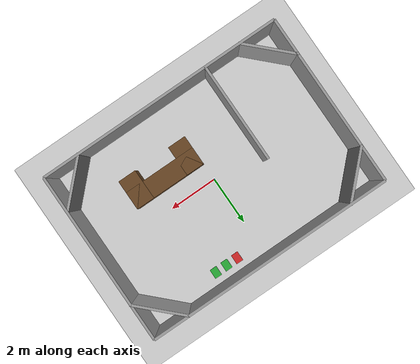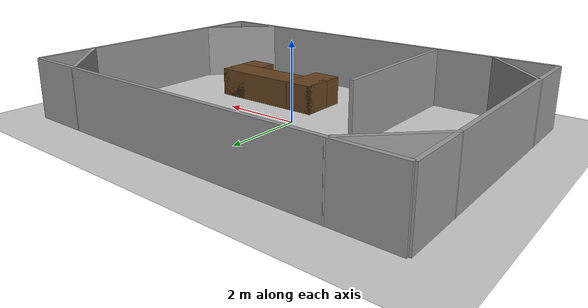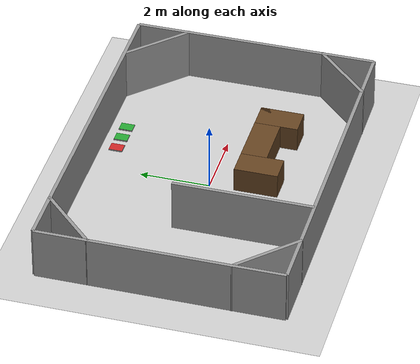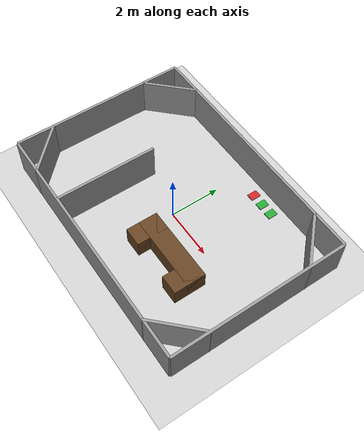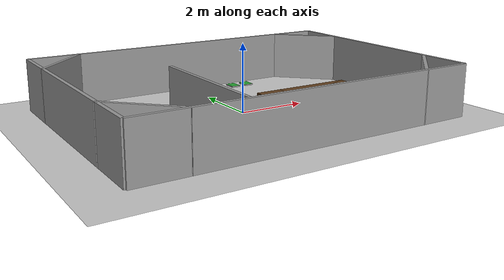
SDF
<sdf version="1.6">
 <world name="default">
  <include><uri>model://ground_plane</uri></include>
  <include><uri>model://sun</uri></include>
  <include><uri>model://room2</uri><pose>0 0 0.5 0 0 0</pose></include>
  <include><uri>model://PaintTrayRed</uri><pose>1 3 0.02 0 0 1.5707</pose></include>
  <include><uri>model://PaintTrayGreen</uri><pose>1.5 3 0.02 0 0 1.5707</pose></include>
  <include><uri>model://PaintTrayBlue</uri><pose>2 3 0.02 0 0 1.5707</pose></include>
  <include><uri>model://Desk</uri><pose>1.5 -1.25 0.3675 0 0 0</pose></include>
 </world>
</sdf>

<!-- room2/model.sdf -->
<sdf version='1.6'>
  <model name='room2'>
    <link name='outer_0'>
      <inertial>
        <mass>1</mass>
        <inertia>
          <ixx>0.166667</ixx>
          <ixy>0</ixy>
          <ixz>0</ixz>
          <iyy>0.166667</iyy>
          <iyz>0</iyz>
          <izz>0.166667</izz>
        </inertia>
        <pose frame=''>0 0 0 0 -0 0</pose>
      </inertial>
      <pose frame=''>0 -3.5 0 0 -0 0</pose>
      <gravity>1</gravity>
      <self_collide>0</self_collide>
      <kinematic>0</kinematic>
      <enable_wind>0</enable_wind>
      <visual name='visual'>
        <pose frame=''>0 0 0 0 -0 0</pose>
        <geometry>
          <box>
            <size>10 0.1 2</size>
          </box>
        </geometry>
        <material>
          <lighting>1</lighting>
          <script>
            <uri>file://media/materials/scripts/gazebo.material</uri>
            <name>Gazebo/Grey</name>
          </script>
          <shader type='pixel'>
            <normal_map>__default__</normal_map>
          </shader>
          <ambient>0.3 0.3 0.3 1</ambient>
          <diffuse>0.7 0.7 0.7 1</diffuse>
          <specular>0.01 0.01 0.01 1</specular>
          <emissive>0 0 0 1</emissive>
        </material>
        <transparency>0</transparency>
        <cast_shadows>1</cast_shadows>
      </visual>
      <collision name='collision'>
        <laser_retro>0</laser_retro>
        <max_contacts>10</max_contacts>
        <pose frame=''>0 0 0 0 -0 0</pose>
        <geometry>
          <box>
            <size>10 0.1 2</size>
          </box>
        </geometry>
        <surface>
          <friction>
            <ode>
              <mu>1</mu>
              <mu2>1</mu2>
              <fdir1>0 0 0</fdir1>
              <slip1>0</slip1>
              <slip2>0</slip2>
            </ode>
            <torsional>
              <coefficient>1</coefficient>
              <patch_radius>0</patch_radius>
              <surface_radius>0</surface_radius>
              <use_patch_radius>1</use_patch_radius>
              <ode>
                <slip>0</slip>
              </ode>
            </torsional>
          </friction>
          <bounce>
            <restitution_coefficient>0</restitution_coefficient>
            <threshold>1e+06</threshold>
          </bounce>
          <contact>
            <collide_without_contact>0</collide_without_contact>
            <collide_without_contact_bitmask>1</collide_without_contact_bitmask>
            <collide_bitmask>1</collide_bitmask>
            <ode>
              <soft_cfm>0</soft_cfm>
              <soft_erp>0.2</soft_erp>
              <kp>1e+13</kp>
              <kd>1</kd>
              <max_vel>0.01</max_vel>
              <min_depth>0</min_depth>
            </ode>
            <bullet>
              <split_impulse>1</split_impulse>
              <split_impulse_penetration_threshold>-0.01</split_impulse_penetration_threshold>
              <soft_cfm>0</soft_cfm>
              <soft_erp>0.2</soft_erp>
              <kp>1e+13</kp>
              <kd>1</kd>
            </bullet>
          </contact>
        </surface>
      </collision>
    </link>
    <link name='inner_0'>
      <inertial>
        <mass>1</mass>
        <inertia>
          <ixx>0.166667</ixx>
          <ixy>0</ixy>
          <ixz>0</ixz>
          <iyy>0.166667</iyy>
          <iyz>0</iyz>
          <izz>0.166667</izz>
        </inertia>
        <pose frame=''>0 0 0 0 -0 0</pose>
      </inertial>
      <pose frame=''>-2 -1.5 0 0 -0 0</pose>
      <gravity>1</gravity>
      <self_collide>0</self_collide>
      <kinematic>0</kinematic>
      <enable_wind>0</enable_wind>
      <visual name='visual'>
        <pose frame=''>0 0 0 0 -0 0</pose>
        <geometry>
          <box>
            <size>0.1 4 2</size>
          </box>
        </geometry>
        <material>
          <lighting>1</lighting>
          <script>
            <uri>file://media/materials/scripts/gazebo.material</uri>
            <name>Gazebo/Grey</name>
          </script>
          <shader type='pixel'>
            <normal_map>__default__</normal_map>
          </shader>
          <ambient>0.3 0.3 0.3 1</ambient>
          <diffuse>0.7 0.7 0.7 1</diffuse>
          <specular>0.01 0.01 0.01 1</specular>
          <emissive>0 0 0 1</emissive>
        </material>
        <transparency>0</transparency>
        <cast_shadows>1</cast_shadows>
      </visual>
      <collision name='collision'>
        <laser_retro>0</laser_retro>
        <max_contacts>10</max_contacts>
        <pose frame=''>0 0 0 0 -0 0</pose>
        <geometry>
          <box>
            <size>0.1 4 2</size>
          </box>
        </geometry>
        <surface>
          <friction>
            <ode>
              <mu>1</mu>
              <mu2>1</mu2>
              <fdir1>0 0 0</fdir1>
              <slip1>0</slip1>
              <slip2>0</slip2>
            </ode>
            <torsional>
              <coefficient>1</coefficient>
              <patch_radius>0</patch_radius>
              <surface_radius>0</surface_radius>
              <use_patch_radius>1</use_patch_radius>
              <ode>
                <slip>0</slip>
              </ode>
            </torsional>
          </friction>
          <bounce>
            <restitution_coefficient>0</restitution_coefficient>
            <threshold>1e+06</threshold>
          </bounce>
          <contact>
            <collide_without_contact>0</collide_without_contact>
            <collide_without_contact_bitmask>1</collide_without_contact_bitmask>
            <collide_bitmask>1</collide_bitmask>
            <ode>
              <soft_cfm>0</soft_cfm>
              <soft_erp>0.2</soft_erp>
              <kp>1e+13</kp>
              <kd>1</kd>
              <max_vel>0.01</max_vel>
              <min_depth>0</min_depth>
            </ode>
            <bullet>
              <split_impulse>1</split_impulse>
              <split_impulse_penetration_threshold>-0.01</split_impulse_penetration_threshold>
              <soft_cfm>0</soft_cfm>
              <soft_erp>0.2</soft_erp>
              <kp>1e+13</kp>
              <kd>1</kd>
            </bullet>
          </contact>
        </surface>
      </collision>
    </link>
    <link name='inner_1'>
      <inertial>
        <mass>1</mass>
        <inertia>
          <ixx>0.166667</ixx>
          <ixy>0</ixy>
          <ixz>0</ixz>
          <iyy>0.166667</iyy>
          <iyz>0</iyz>
          <izz>0.166667</izz>
        </inertia>
        <pose frame=''>0 0 0 0 -0 0</pose>
      </inertial>
      <pose frame=''>-4.25 -2.75 0 0 -0 0.79</pose>
      <gravity>1</gravity>
      <self_collide>0</self_collide>
      <kinematic>0</kinematic>
      <enable_wind>0</enable_wind>
      <visual name='visual'>
        <pose frame=''>0 0 0 0 -0 0</pose>
        <geometry>
          <box>
            <size>0.1 2.2 2</size>
          </box>
        </geometry>
        <material>
          <lighting>1</lighting>
          <script>
            <uri>file://media/materials/scripts/gazebo.material</uri>
            <name>Gazebo/Grey</name>
          </script>
          <shader type='pixel'>
            <normal_map>__default__</normal_map>
          </shader>
          <ambient>0.3 0.3 0.3 1</ambient>
          <diffuse>0.7 0.7 0.7 1</diffuse>
          <specular>0.01 0.01 0.01 1</specular>
          <emissive>0 0 0 1</emissive>
        </material>
        <transparency>0</transparency>
        <cast_shadows>1</cast_shadows>
      </visual>
      <collision name='collision'>
        <laser_retro>0</laser_retro>
        <max_contacts>10</max_contacts>
        <pose frame=''>0 0 0 0 -0 0</pose>
        <geometry>
          <box>
            <size>0.1 2.2 2</size>
          </box>
        </geometry>
        <surface>
          <friction>
            <ode>
              <mu>1</mu>
              <mu2>1</mu2>
              <fdir1>0 0 0</fdir1>
              <slip1>0</slip1>
              <slip2>0</slip2>
            </ode>
            <torsional>
              <coefficient>1</coefficient>
              <patch_radius>0</patch_radius>
              <surface_radius>0</surface_radius>
              <use_patch_radius>1</use_patch_radius>
              <ode>
                <slip>0</slip>
              </ode>
            </torsional>
          </friction>
          <bounce>
            <restitution_coefficient>0</restitution_coefficient>
            <threshold>1e+06</threshold>
          </bounce>
          <contact>
            <collide_without_contact>0</collide_without_contact>
            <collide_without_contact_bitmask>1</collide_without_contact_bitmask>
            <collide_bitmask>1</collide_bitmask>
            <ode>
              <soft_cfm>0</soft_cfm>
              <soft_erp>0.2</soft_erp>
              <kp>1e+13</kp>
              <kd>1</kd>
              <max_vel>0.01</max_vel>
              <min_depth>0</min_depth>
            </ode>
            <bullet>
              <split_impulse>1</split_impulse>
              <split_impulse_penetration_threshold>-0.01</split_impulse_penetration_threshold>
              <soft_cfm>0</soft_cfm>
              <soft_erp>0.2</soft_erp>
              <kp>1e+13</kp>
              <kd>1</kd>
            </bullet>
          </contact>
        </surface>
      </collision>
    </link>
    <link name='inner_2'>
      <inertial>
        <mass>1</mass>
        <inertia>
          <ixx>0.166667</ixx>
          <ixy>0</ixy>
          <ixz>0</ixz>
          <iyy>0.166667</iyy>
          <iyz>0</iyz>
          <izz>0.166667</izz>
        </inertia>
        <pose frame=''>0 0 0 0 -0 0</pose>
      </inertial>
      <pose frame=''>-4.25 2.75 0 0 -0 2.36</pose>
      <gravity>1</gravity>
      <self_collide>0</self_collide>
      <kinematic>0</kinematic>
      <enable_wind>0</enable_wind>
      <visual name='visual'>
        <pose frame=''>0 0 0 0 -0 0</pose>
        <geometry>
          <box>
            <size>0.1 2.2 2</size>
          </box>
        </geometry>
        <material>
          <lighting>1</lighting>
          <script>
            <uri>file://media/materials/scripts/gazebo.material</uri>
            <name>Gazebo/Grey</name>
          </script>
          <shader type='pixel'>
            <normal_map>__default__</normal_map>
          </shader>
          <ambient>0.3 0.3 0.3 1</ambient>
          <diffuse>0.7 0.7 0.7 1</diffuse>
          <specular>0.01 0.01 0.01 1</specular>
          <emissive>0 0 0 1</emissive>
        </material>
        <transparency>0</transparency>
        <cast_shadows>1</cast_shadows>
      </visual>
      <collision name='collision'>
        <laser_retro>0</laser_retro>
        <max_contacts>10</max_contacts>
        <pose frame=''>0 0 0 0 -0 0</pose>
        <geometry>
          <box>
            <size>0.1 2.2 2</size>
          </box>
        </geometry>
        <surface>
          <friction>
            <ode>
              <mu>1</mu>
              <mu2>1</mu2>
              <fdir1>0 0 0</fdir1>
              <slip1>0</slip1>
              <slip2>0</slip2>
            </ode>
            <torsional>
              <coefficient>1</coefficient>
              <patch_radius>0</patch_radius>
              <surface_radius>0</surface_radius>
              <use_patch_radius>1</use_patch_radius>
              <ode>
                <slip>0</slip>
              </ode>
            </torsional>
          </friction>
          <bounce>
            <restitution_coefficient>0</restitution_coefficient>
            <threshold>1e+06</threshold>
          </bounce>
          <contact>
            <collide_without_contact>0</collide_without_contact>
            <collide_without_contact_bitmask>1</collide_without_contact_bitmask>
            <collide_bitmask>1</collide_bitmask>
            <ode>
              <soft_cfm>0</soft_cfm>
              <soft_erp>0.2</soft_erp>
              <kp>1e+13</kp>
              <kd>1</kd>
              <max_vel>0.01</max_vel>
              <min_depth>0</min_depth>
            </ode>
            <bullet>
              <split_impulse>1</split_impulse>
              <split_impulse_penetration_threshold>-0.01</split_impulse_penetration_threshold>
              <soft_cfm>0</soft_cfm>
              <soft_erp>0.2</soft_erp>
              <kp>1e+13</kp>
              <kd>1</kd>
            </bullet>
          </contact>
        </surface>
      </collision>
    </link>
    <link name='inner_3'>
      <inertial>
        <mass>1</mass>
        <inertia>
          <ixx>0.166667</ixx>
          <ixy>0</ixy>
          <ixz>0</ixz>
          <iyy>0.166667</iyy>
          <iyz>0</iyz>
          <izz>0.166667</izz>
        </inertia>
        <pose frame=''>0 0 0 0 -0 0</pose>
      </inertial>
      <pose frame=''>4.25 2.75 0 0 0 -2.35318</pose>
      <gravity>1</gravity>
      <self_collide>0</self_collide>
      <kinematic>0</kinematic>
      <enable_wind>0</enable_wind>
      <visual name='visual'>
        <pose frame=''>0 0 0 0 -0 0</pose>
        <geometry>
          <box>
            <size>0.1 2.2 2</size>
          </box>
        </geometry>
        <material>
          <lighting>1</lighting>
          <script>
            <uri>file://media/materials/scripts/gazebo.material</uri>
            <name>Gazebo/Grey</name>
          </script>
          <shader type='pixel'>
            <normal_map>__default__</normal_map>
          </shader>
          <ambient>0.3 0.3 0.3 1</ambient>
          <diffuse>0.7 0.7 0.7 1</diffuse>
          <specular>0.01 0.01 0.01 1</specular>
          <emissive>0 0 0 1</emissive>
        </material>
        <transparency>0</transparency>
        <cast_shadows>1</cast_shadows>
      </visual>
      <collision name='collision'>
        <laser_retro>0</laser_retro>
        <max_contacts>10</max_contacts>
        <pose frame=''>0 0 0 0 -0 0</pose>
        <geometry>
          <box>
            <size>0.1 2.2 2</size>
          </box>
        </geometry>
        <surface>
          <friction>
            <ode>
              <mu>1</mu>
              <mu2>1</mu2>
              <fdir1>0 0 0</fdir1>
              <slip1>0</slip1>
              <slip2>0</slip2>
            </ode>
            <torsional>
              <coefficient>1</coefficient>
              <patch_radius>0</patch_radius>
              <surface_radius>0</surface_radius>
              <use_patch_radius>1</use_patch_radius>
              <ode>
                <slip>0</slip>
              </ode>
            </torsional>
          </friction>
          <bounce>
            <restitution_coefficient>0</restitution_coefficient>
            <threshold>1e+06</threshold>
          </bounce>
          <contact>
            <collide_without_contact>0</collide_without_contact>
            <collide_without_contact_bitmask>1</collide_without_contact_bitmask>
            <collide_bitmask>1</collide_bitmask>
            <ode>
              <soft_cfm>0</soft_cfm>
              <soft_erp>0.2</soft_erp>
              <kp>1e+13</kp>
              <kd>1</kd>
              <max_vel>0.01</max_vel>
              <min_depth>0</min_depth>
            </ode>
            <bullet>
              <split_impulse>1</split_impulse>
              <split_impulse_penetration_threshold>-0.01</split_impulse_penetration_threshold>
              <soft_cfm>0</soft_cfm>
              <soft_erp>0.2</soft_erp>
              <kp>1e+13</kp>
              <kd>1</kd>
            </bullet>
          </contact>
        </surface>
      </collision>
    </link>
    <link name='inner_4'>
      <inertial>
        <mass>1</mass>
        <inertia>
          <ixx>0.166667</ixx>
          <ixy>0</ixy>
          <ixz>0</ixz>
          <iyy>0.166667</iyy>
          <iyz>0</iyz>
          <izz>0.166667</izz>
        </inertia>
        <pose frame=''>0 0 0 0 -0 0</pose>
      </inertial>
      <pose frame=''>4.25 -2.75 0 0 0 -0.783185</pose>
      <gravity>1</gravity>
      <self_collide>0</self_collide>
      <kinematic>0</kinematic>
      <enable_wind>0</enable_wind>
      <visual name='visual'>
        <pose frame=''>0 0 0 0 -0 0</pose>
        <geometry>
          <box>
            <size>0.1 2.2 2</size>
          </box>
        </geometry>
        <material>
          <lighting>1</lighting>
          <script>
            <uri>file://media/materials/scripts/gazebo.material</uri>
            <name>Gazebo/Grey</name>
          </script>
          <shader type='pixel'>
            <normal_map>__default__</normal_map>
          </shader>
          <ambient>0.3 0.3 0.3 1</ambient>
          <diffuse>0.7 0.7 0.7 1</diffuse>
          <specular>0.01 0.01 0.01 1</specular>
          <emissive>0 0 0 1</emissive>
        </material>
        <transparency>0</transparency>
        <cast_shadows>1</cast_shadows>
      </visual>
      <collision name='collision'>
        <laser_retro>0</laser_retro>
        <max_contacts>10</max_contacts>
        <pose frame=''>0 0 0 0 -0 0</pose>
        <geometry>
          <box>
            <size>0.1 2.2 2</size>
          </box>
        </geometry>
        <surface>
          <friction>
            <ode>
              <mu>1</mu>
              <mu2>1</mu2>
              <fdir1>0 0 0</fdir1>
              <slip1>0</slip1>
              <slip2>0</slip2>
            </ode>
            <torsional>
              <coefficient>1</coefficient>
              <patch_radius>0</patch_radius>
              <surface_radius>0</surface_radius>
              <use_patch_radius>1</use_patch_radius>
              <ode>
                <slip>0</slip>
              </ode>
            </torsional>
          </friction>
          <bounce>
            <restitution_coefficient>0</restitution_coefficient>
            <threshold>1e+06</threshold>
          </bounce>
          <contact>
            <collide_without_contact>0</collide_without_contact>
            <collide_without_contact_bitmask>1</collide_without_contact_bitmask>
            <collide_bitmask>1</collide_bitmask>
            <ode>
              <soft_cfm>0</soft_cfm>
              <soft_erp>0.2</soft_erp>
              <kp>1e+13</kp>
              <kd>1</kd>
              <max_vel>0.01</max_vel>
              <min_depth>0</min_depth>
            </ode>
            <bullet>
              <split_impulse>1</split_impulse>
              <split_impulse_penetration_threshold>-0.01</split_impulse_penetration_threshold>
              <soft_cfm>0</soft_cfm>
              <soft_erp>0.2</soft_erp>
              <kp>1e+13</kp>
              <kd>1</kd>
            </bullet>
          </contact>
        </surface>
      </collision>
    </link>
    <link name='outer_1'>
      <inertial>
        <mass>1</mass>
        <inertia>
          <ixx>0.166667</ixx>
          <ixy>0</ixy>
          <ixz>0</ixz>
          <iyy>0.166667</iyy>
          <iyz>0</iyz>
          <izz>0.166667</izz>
        </inertia>
        <pose frame=''>0 0 0 0 -0 0</pose>
      </inertial>
      <pose frame=''>0 3.5 0 0 -0 0</pose>
      <gravity>1</gravity>
      <self_collide>0</self_collide>
      <kinematic>0</kinematic>
      <enable_wind>0</enable_wind>
      <visual name='visual'>
        <pose frame=''>0 0 0 0 -0 0</pose>
        <geometry>
          <box>
            <size>10 0.1 2</size>
          </box>
        </geometry>
        <material>
          <lighting>1</lighting>
          <script>
            <uri>file://media/materials/scripts/gazebo.material</uri>
            <name>Gazebo/Grey</name>
          </script>
          <shader type='pixel'>
            <normal_map>__default__</normal_map>
          </shader>
          <ambient>0.3 0.3 0.3 1</ambient>
          <diffuse>0.7 0.7 0.7 1</diffuse>
          <specular>0.01 0.01 0.01 1</specular>
          <emissive>0 0 0 1</emissive>
        </material>
        <transparency>0</transparency>
        <cast_shadows>1</cast_shadows>
      </visual>
      <collision name='collision'>
        <laser_retro>0</laser_retro>
        <max_contacts>10</max_contacts>
        <pose frame=''>0 0 0 0 -0 0</pose>
        <geometry>
          <box>
            <size>10 0.1 2</size>
          </box>
        </geometry>
        <surface>
          <friction>
            <ode>
              <mu>1</mu>
              <mu2>1</mu2>
              <fdir1>0 0 0</fdir1>
              <slip1>0</slip1>
              <slip2>0</slip2>
            </ode>
            <torsional>
              <coefficient>1</coefficient>
              <patch_radius>0</patch_radius>
              <surface_radius>0</surface_radius>
              <use_patch_radius>1</use_patch_radius>
              <ode>
                <slip>0</slip>
              </ode>
            </torsional>
          </friction>
          <bounce>
            <restitution_coefficient>0</restitution_coefficient>
            <threshold>1e+06</threshold>
          </bounce>
          <contact>
            <collide_without_contact>0</collide_without_contact>
            <collide_without_contact_bitmask>1</collide_without_contact_bitmask>
            <collide_bitmask>1</collide_bitmask>
            <ode>
              <soft_cfm>0</soft_cfm>
              <soft_erp>0.2</soft_erp>
              <kp>1e+13</kp>
              <kd>1</kd>
              <max_vel>0.01</max_vel>
              <min_depth>0</min_depth>
            </ode>
            <bullet>
              <split_impulse>1</split_impulse>
              <split_impulse_penetration_threshold>-0.01</split_impulse_penetration_threshold>
              <soft_cfm>0</soft_cfm>
              <soft_erp>0.2</soft_erp>
              <kp>1e+13</kp>
              <kd>1</kd>
            </bullet>
          </contact>
        </surface>
      </collision>
    </link>
    <link name='outer_3'>
      <inertial>
        <mass>1</mass>
        <inertia>
          <ixx>0.166667</ixx>
          <ixy>0</ixy>
          <ixz>0</ixz>
          <iyy>0.166667</iyy>
          <iyz>0</iyz>
          <izz>0.166667</izz>
        </inertia>
        <pose frame=''>0 0 0 0 -0 0</pose>
      </inertial>
      <pose frame=''>5 0 0 0 -0 0</pose>
      <gravity>1</gravity>
      <self_collide>0</self_collide>
      <kinematic>0</kinematic>
      <enable_wind>0</enable_wind>
      <visual name='visual'>
        <pose frame=''>0 0 0 0 -0 0</pose>
        <geometry>
          <box>
            <size>0.1 7 2</size>
          </box>
        </geometry>
        <material>
          <lighting>1</lighting>
          <script>
            <uri>file://media/materials/scripts/gazebo.material</uri>
            <name>Gazebo/Grey</name>
          </script>
          <shader type='pixel'>
            <normal_map>__default__</normal_map>
          </shader>
          <ambient>0.3 0.3 0.3 1</ambient>
          <diffuse>0.7 0.7 0.7 1</diffuse>
          <specular>0.01 0.01 0.01 1</specular>
          <emissive>0 0 0 1</emissive>
        </material>
        <transparency>0</transparency>
        <cast_shadows>1</cast_shadows>
      </visual>
      <collision name='collision'>
        <laser_retro>0</laser_retro>
        <max_contacts>10</max_contacts>
        <pose frame=''>0 0 0 0 -0 0</pose>
        <geometry>
          <box>
            <size>0.1 7 2</size>
          </box>
        </geometry>
        <surface>
          <friction>
            <ode>
              <mu>1</mu>
              <mu2>1</mu2>
              <fdir1>0 0 0</fdir1>
              <slip1>0</slip1>
              <slip2>0</slip2>
            </ode>
            <torsional>
              <coefficient>1</coefficient>
              <patch_radius>0</patch_radius>
              <surface_radius>0</surface_radius>
              <use_patch_radius>1</use_patch_radius>
              <ode>
                <slip>0</slip>
              </ode>
            </torsional>
          </friction>
          <bounce>
            <restitution_coefficient>0</restitution_coefficient>
            <threshold>1e+06</threshold>
          </bounce>
          <contact>
            <collide_without_contact>0</collide_without_contact>
            <collide_without_contact_bitmask>1</collide_without_contact_bitmask>
            <collide_bitmask>1</collide_bitmask>
            <ode>
              <soft_cfm>0</soft_cfm>
              <soft_erp>0.2</soft_erp>
              <kp>1e+13</kp>
              <kd>1</kd>
              <max_vel>0.01</max_vel>
              <min_depth>0</min_depth>
            </ode>
            <bullet>
              <split_impulse>1</split_impulse>
              <split_impulse_penetration_threshold>-0.01</split_impulse_penetration_threshold>
              <soft_cfm>0</soft_cfm>
              <soft_erp>0.2</soft_erp>
              <kp>1e+13</kp>
              <kd>1</kd>
            </bullet>
          </contact>
        </surface>
      </collision>
    </link>
    <link name='outer_4'>
      <inertial>
        <mass>1</mass>
        <inertia>
          <ixx>0.166667</ixx>
          <ixy>0</ixy>
          <ixz>0</ixz>
          <iyy>0.166667</iyy>
          <iyz>0</iyz>
          <izz>0.166667</izz>
        </inertia>
        <pose frame=''>0 0 0 0 -0 0</pose>
      </inertial>
      <pose frame=''>-5 0 0 0 -0 0</pose>
      <gravity>1</gravity>
      <self_collide>0</self_collide>
      <kinematic>0</kinematic>
      <enable_wind>0</enable_wind>
      <visual name='visual'>
        <pose frame=''>0 0 0 0 -0 0</pose>
        <geometry>
          <box>
            <size>0.1 7 2</size>
          </box>
        </geometry>
        <material>
          <lighting>1</lighting>
          <script>
            <uri>file://media/materials/scripts/gazebo.material</uri>
            <name>Gazebo/Grey</name>
          </script>
          <shader type='pixel'>
            <normal_map>__default__</normal_map>
          </shader>
          <ambient>0.3 0.3 0.3 1</ambient>
          <diffuse>0.7 0.7 0.7 1</diffuse>
          <specular>0.01 0.01 0.01 1</specular>
          <emissive>0 0 0 1</emissive>
        </material>
        <transparency>0</transparency>
        <cast_shadows>1</cast_shadows>
      </visual>
      <collision name='collision'>
        <laser_retro>0</laser_retro>
        <max_contacts>10</max_contacts>
        <pose frame=''>0 0 0 0 -0 0</pose>
        <geometry>
          <box>
            <size>0.1 7 2</size>
          </box>
        </geometry>
        <surface>
          <friction>
            <ode>
              <mu>1</mu>
              <mu2>1</mu2>
              <fdir1>0 0 0</fdir1>
              <slip1>0</slip1>
              <slip2>0</slip2>
            </ode>
            <torsional>
              <coefficient>1</coefficient>
              <patch_radius>0</patch_radius>
              <surface_radius>0</surface_radius>
              <use_patch_radius>1</use_patch_radius>
              <ode>
                <slip>0</slip>
              </ode>
            </torsional>
          </friction>
          <bounce>
            <restitution_coefficient>0</restitution_coefficient>
            <threshold>1e+06</threshold>
          </bounce>
          <contact>
            <collide_without_contact>0</collide_without_contact>
            <collide_without_contact_bitmask>1</collide_without_contact_bitmask>
            <collide_bitmask>1</collide_bitmask>
            <ode>
              <soft_cfm>0</soft_cfm>
              <soft_erp>0.2</soft_erp>
              <kp>1e+13</kp>
              <kd>1</kd>
              <max_vel>0.01</max_vel>
              <min_depth>0</min_depth>
            </ode>
            <bullet>
              <split_impulse>1</split_impulse>
              <split_impulse_penetration_threshold>-0.01</split_impulse_penetration_threshold>
              <soft_cfm>0</soft_cfm>
              <soft_erp>0.2</soft_erp>
              <kp>1e+13</kp>
              <kd>1</kd>
            </bullet>
          </contact>
        </surface>
      </collision>
    </link>
    <static>1</static>
    <allow_auto_disable>1</allow_auto_disable>
  </model>
</sdf>

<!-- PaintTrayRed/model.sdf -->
<sdf version='1.6'>
  <model name='PaintTrayRed'>
    <link name='tray'>
      <inertial>
        <mass>1</mass>
        <inertia>
          <ixx>0.166667</ixx>
          <ixy>0</ixy>
          <ixz>0</ixz>
          <iyy>0.166667</iyy>
          <iyz>0</iyz>
          <izz>0.166667</izz>
        </inertia>
        <pose frame=''>0 0 0 0 -0 0</pose>
      </inertial>
      <pose frame=''>0 0 -0.01 0 -0 0</pose>
      <gravity>1</gravity>
      <self_collide>0</self_collide>
      <kinematic>0</kinematic>
      <enable_wind>0</enable_wind>
      <visual name='visual'>
        <pose frame=''>0 0 0 0 -0 0</pose>
        <geometry>
          <box>
            <size>0.3937 0.2921 0.04</size>
          </box>
        </geometry>
        <material>
          <lighting>1</lighting>
          <script>
            <uri>file://media/materials/scripts/gazebo.material</uri>
            <name>Gazebo/Grey</name>
          </script>
          <shader type='vertex'>
            <normal_map>__default__</normal_map>
          </shader>
          <ambient>0.3 0.3 0.3 1</ambient>
          <diffuse>0.7 0.7 0.7 1</diffuse>
          <specular>0.01 0.01 0.01 1</specular>
          <emissive>0 0 0 1</emissive>
        </material>
        <transparency>0</transparency>
        <cast_shadows>1</cast_shadows>
      </visual>
      <collision name='collision'>
        <laser_retro>0</laser_retro>
        <max_contacts>10</max_contacts>
        <pose frame=''>0 0 0 0 -0 0</pose>
        <geometry>
          <box>
            <size>0.3937 0.2921 0.04</size>
          </box>
        </geometry>
        <surface>
          <friction>
            <ode>
              <mu>1</mu>
              <mu2>1</mu2>
              <fdir1>0 0 0</fdir1>
              <slip1>0</slip1>
              <slip2>0</slip2>
            </ode>
            <torsional>
              <coefficient>1</coefficient>
              <patch_radius>0</patch_radius>
              <surface_radius>0</surface_radius>
              <use_patch_radius>1</use_patch_radius>
              <ode>
                <slip>0</slip>
              </ode>
            </torsional>
          </friction>
          <bounce>
            <restitution_coefficient>0</restitution_coefficient>
            <threshold>1e+06</threshold>
          </bounce>
          <contact>
            <collide_without_contact>0</collide_without_contact>
            <collide_without_contact_bitmask>1</collide_without_contact_bitmask>
            <collide_bitmask>1</collide_bitmask>
            <ode>
              <soft_cfm>0</soft_cfm>
              <soft_erp>0.2</soft_erp>
              <kp>1e+13</kp>
              <kd>1</kd>
              <max_vel>0.01</max_vel>
              <min_depth>0</min_depth>
            </ode>
            <bullet>
              <split_impulse>1</split_impulse>
              <split_impulse_penetration_threshold>-0.01</split_impulse_penetration_threshold>
              <soft_cfm>0</soft_cfm>
              <soft_erp>0.2</soft_erp>
              <kp>1e+13</kp>
              <kd>1</kd>
            </bullet>
          </contact>
        </surface>
      </collision>
    </link>
    <link name='paint'>
      <inertial>
        <mass>1</mass>
        <inertia>
          <ixx>0.166667</ixx>
          <ixy>0</ixy>
          <ixz>0</ixz>
          <iyy>0.166667</iyy>
          <iyz>0</iyz>
          <izz>0.166667</izz>
        </inertia>
        <pose frame=''>0 0 0 0 -0 0</pose>
      </inertial>
      <pose frame=''>0 0 0.01 0 -0 0</pose>
      <gravity>1</gravity>
      <self_collide>0</self_collide>
      <kinematic>0</kinematic>
      <enable_wind>0</enable_wind>
      <visual name='visual'>
        <pose frame=''>0 0 0 0 -0 0</pose>
        <geometry>
          <box>
            <size>0.3936 0.292 0.002</size>
          </box>
        </geometry>
        <material>
          <lighting>1</lighting>
          <script>
            <uri>file://media/materials/scripts/gazebo.material</uri>
            <name>Gazebo/Red</name>
          </script>
          <shader type='vertex'>
            <normal_map>__default__</normal_map>
          </shader>
          <ambient>1 0 0 1</ambient>
          <diffuse>1 0 0 1</diffuse>
          <specular>0.01 0.01 0.01 1</specular>
          <emissive>0 0 0 1</emissive>
        </material>
        <transparency>0</transparency>
        <cast_shadows>1</cast_shadows>
      </visual>
      <collision name='collision'>
        <laser_retro>0</laser_retro>
        <max_contacts>10</max_contacts>
        <pose frame=''>0 0 0 0 -0 0</pose>
        <geometry>
          <box>
            <size>0.3936 0.292 0.002</size>
          </box>
        </geometry>
        <surface>
          <friction>
            <ode>
              <mu>1</mu>
              <mu2>1</mu2>
              <fdir1>0 0 0</fdir1>
              <slip1>0</slip1>
              <slip2>0</slip2>
            </ode>
            <torsional>
              <coefficient>1</coefficient>
              <patch_radius>0</patch_radius>
              <surface_radius>0</surface_radius>
              <use_patch_radius>1</use_patch_radius>
              <ode>
                <slip>0</slip>
              </ode>
            </torsional>
          </friction>
          <bounce>
            <restitution_coefficient>0</restitution_coefficient>
            <threshold>1e+06</threshold>
          </bounce>
          <contact>
            <collide_without_contact>0</collide_without_contact>
            <collide_without_contact_bitmask>1</collide_without_contact_bitmask>
            <collide_bitmask>1</collide_bitmask>
            <ode>
              <soft_cfm>0</soft_cfm>
              <soft_erp>0.2</soft_erp>
              <kp>1e+13</kp>
              <kd>1</kd>
              <max_vel>0.01</max_vel>
              <min_depth>0</min_depth>
            </ode>
            <bullet>
              <split_impulse>1</split_impulse>
              <split_impulse_penetration_threshold>-0.01</split_impulse_penetration_threshold>
              <soft_cfm>0</soft_cfm>
              <soft_erp>0.2</soft_erp>
              <kp>1e+13</kp>
              <kd>1</kd>
            </bullet>
          </contact>
        </surface>
      </collision>
    </link>
    <joint name='tray_paint' type='fixed'>
      <parent>tray</parent>
      <child>paint</child>
      <pose frame=''>0 0 0 0 -0 0</pose>
      <physics>
        <ode>
          <limit>
            <cfm>0</cfm>
            <erp>0.2</erp>
          </limit>
          <suspension>
            <cfm>0</cfm>
            <erp>0.2</erp>
          </suspension>
        </ode>
      </physics>
    </joint>
    <static>0</static>
    <allow_auto_disable>1</allow_auto_disable>
  </model>
</sdf>

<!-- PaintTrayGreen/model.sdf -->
<sdf version='1.6'>
  <model name='PaintTrayGreen'>
    <link name='tray'>
      <inertial>
        <mass>1</mass>
        <inertia>
          <ixx>0.166667</ixx>
          <ixy>0</ixy>
          <ixz>0</ixz>
          <iyy>0.166667</iyy>
          <iyz>0</iyz>
          <izz>0.166667</izz>
        </inertia>
        <pose frame=''>0 0 0 0 -0 0</pose>
      </inertial>
      <pose frame=''>0 0 -0.01 0 -0 0</pose>
      <gravity>1</gravity>
      <self_collide>0</self_collide>
      <kinematic>0</kinematic>
      <enable_wind>0</enable_wind>
      <visual name='visual'>
        <pose frame=''>0 0 0 0 -0 0</pose>
        <geometry>
          <box>
            <size>0.3937 0.2921 0.04</size>
          </box>
        </geometry>
        <material>
          <lighting>1</lighting>
          <script>
            <uri>file://media/materials/scripts/gazebo.material</uri>
            <name>Gazebo/Grey</name>
          </script>
          <shader type='vertex'>
            <normal_map>__default__</normal_map>
          </shader>
          <ambient>0.3 0.3 0.3 1</ambient>
          <diffuse>0.7 0.7 0.7 1</diffuse>
          <specular>0.01 0.01 0.01 1</specular>
          <emissive>0 0 0 1</emissive>
        </material>
        <transparency>0</transparency>
        <cast_shadows>1</cast_shadows>
      </visual>
      <collision name='collision'>
        <laser_retro>0</laser_retro>
        <max_contacts>10</max_contacts>
        <pose frame=''>0 0 0 0 -0 0</pose>
        <geometry>
          <box>
            <size>0.3937 0.2921 0.04</size>
          </box>
        </geometry>
        <surface>
          <friction>
            <ode>
              <mu>1</mu>
              <mu2>1</mu2>
              <fdir1>0 0 0</fdir1>
              <slip1>0</slip1>
              <slip2>0</slip2>
            </ode>
            <torsional>
              <coefficient>1</coefficient>
              <patch_radius>0</patch_radius>
              <surface_radius>0</surface_radius>
              <use_patch_radius>1</use_patch_radius>
              <ode>
                <slip>0</slip>
              </ode>
            </torsional>
          </friction>
          <bounce>
            <restitution_coefficient>0</restitution_coefficient>
            <threshold>1e+06</threshold>
          </bounce>
          <contact>
            <collide_without_contact>0</collide_without_contact>
            <collide_without_contact_bitmask>1</collide_without_contact_bitmask>
            <collide_bitmask>1</collide_bitmask>
            <ode>
              <soft_cfm>0</soft_cfm>
              <soft_erp>0.2</soft_erp>
              <kp>1e+13</kp>
              <kd>1</kd>
              <max_vel>0.01</max_vel>
              <min_depth>0</min_depth>
            </ode>
            <bullet>
              <split_impulse>1</split_impulse>
              <split_impulse_penetration_threshold>-0.01</split_impulse_penetration_threshold>
              <soft_cfm>0</soft_cfm>
              <soft_erp>0.2</soft_erp>
              <kp>1e+13</kp>
              <kd>1</kd>
            </bullet>
          </contact>
        </surface>
      </collision>
    </link>
    <link name='paint'>
      <inertial>
        <mass>1</mass>
        <inertia>
          <ixx>0.166667</ixx>
          <ixy>0</ixy>
          <ixz>0</ixz>
          <iyy>0.166667</iyy>
          <iyz>0</iyz>
          <izz>0.166667</izz>
        </inertia>
        <pose frame=''>0 0 0 0 -0 0</pose>
      </inertial>
      <pose frame=''>-0 -0 0.01 0 -0 0</pose>
      <gravity>1</gravity>
      <self_collide>0</self_collide>
      <kinematic>0</kinematic>
      <enable_wind>0</enable_wind>
      <visual name='visual'>
        <pose frame=''>0 0 0 0 -0 0</pose>
        <geometry>
          <box>
            <size>0.3936 0.292 0.002</size>
          </box>
        </geometry>
        <material>
          <lighting>1</lighting>
          <script>
            <uri>file://media/materials/scripts/gazebo.material</uri>
            <name>Gazebo/Green</name>
          </script>
          <shader type='vertex'>
            <normal_map>__default__</normal_map>
          </shader>
          <ambient>0 1 0 1</ambient>
          <diffuse>0 1 0 1</diffuse>
          <specular>0.01 0.01 0.01 1</specular>
          <emissive>0 0 0 1</emissive>
        </material>
        <transparency>0</transparency>
        <cast_shadows>1</cast_shadows>
      </visual>
      <collision name='collision'>
        <laser_retro>0</laser_retro>
        <max_contacts>10</max_contacts>
        <pose frame=''>0 0 0 0 -0 0</pose>
        <geometry>
          <box>
            <size>0.3936 0.292 0.002</size>
          </box>
        </geometry>
        <surface>
          <friction>
            <ode>
              <mu>1</mu>
              <mu2>1</mu2>
              <fdir1>0 0 0</fdir1>
              <slip1>0</slip1>
              <slip2>0</slip2>
            </ode>
            <torsional>
              <coefficient>1</coefficient>
              <patch_radius>0</patch_radius>
              <surface_radius>0</surface_radius>
              <use_patch_radius>1</use_patch_radius>
              <ode>
                <slip>0</slip>
              </ode>
            </torsional>
          </friction>
          <bounce>
            <restitution_coefficient>0</restitution_coefficient>
            <threshold>1e+06</threshold>
          </bounce>
          <contact>
            <collide_without_contact>0</collide_without_contact>
            <collide_without_contact_bitmask>1</collide_without_contact_bitmask>
            <collide_bitmask>1</collide_bitmask>
            <ode>
              <soft_cfm>0</soft_cfm>
              <soft_erp>0.2</soft_erp>
              <kp>1e+13</kp>
              <kd>1</kd>
              <max_vel>0.01</max_vel>
              <min_depth>0</min_depth>
            </ode>
            <bullet>
              <split_impulse>1</split_impulse>
              <split_impulse_penetration_threshold>-0.01</split_impulse_penetration_threshold>
              <soft_cfm>0</soft_cfm>
              <soft_erp>0.2</soft_erp>
              <kp>1e+13</kp>
              <kd>1</kd>
            </bullet>
          </contact>
        </surface>
      </collision>
    </link>
    <joint name='tray_paint' type='fixed'>
      <parent>tray</parent>
      <child>paint</child>
      <pose frame=''>0 0 0 0 -0 0</pose>
      <physics>
        <ode>
          <limit>
            <cfm>0</cfm>
            <erp>0.2</erp>
          </limit>
          <suspension>
            <cfm>0</cfm>
            <erp>0.2</erp>
          </suspension>
        </ode>
      </physics>
    </joint>
    <static>0</static>
    <allow_auto_disable>1</allow_auto_disable>
  </model>
</sdf>

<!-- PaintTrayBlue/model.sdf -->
<sdf version='1.6'>
  <model name='PaintTrayBlue'>
    <link name='tray'>
      <inertial>
        <mass>1</mass>
        <inertia>
          <ixx>0.166667</ixx>
          <ixy>0</ixy>
          <ixz>0</ixz>
          <iyy>0.166667</iyy>
          <iyz>0</iyz>
          <izz>0.166667</izz>
        </inertia>
        <pose frame=''>0 0 0 0 -0 0</pose>
      </inertial>
      <pose frame=''>0 0 -0.01 0 -0 0</pose>
      <gravity>1</gravity>
      <self_collide>0</self_collide>
      <kinematic>0</kinematic>
      <enable_wind>0</enable_wind>
      <visual name='visual'>
        <pose frame=''>0 0 0 0 -0 0</pose>
        <geometry>
          <box>
            <size>0.3937 0.2921 0.04</size>
          </box>
        </geometry>
        <material>
          <lighting>1</lighting>
          <script>
            <uri>file://media/materials/scripts/gazebo.material</uri>
            <name>Gazebo/Grey</name>
          </script>
          <shader type='vertex'>
            <normal_map>__default__</normal_map>
          </shader>
          <ambient>0.3 0.3 0.3 1</ambient>
          <diffuse>0.7 0.7 0.7 1</diffuse>
          <specular>0.01 0.01 0.01 1</specular>
          <emissive>0 0 0 1</emissive>
        </material>
        <transparency>0</transparency>
        <cast_shadows>1</cast_shadows>
      </visual>
      <collision name='collision'>
        <laser_retro>0</laser_retro>
        <max_contacts>10</max_contacts>
        <pose frame=''>0 0 0 0 -0 0</pose>
        <geometry>
          <box>
            <size>0.3937 0.2921 0.04</size>
          </box>
        </geometry>
        <surface>
          <friction>
            <ode>
              <mu>1</mu>
              <mu2>1</mu2>
              <fdir1>0 0 0</fdir1>
              <slip1>0</slip1>
              <slip2>0</slip2>
            </ode>
            <torsional>
              <coefficient>1</coefficient>
              <patch_radius>0</patch_radius>
              <surface_radius>0</surface_radius>
              <use_patch_radius>1</use_patch_radius>
              <ode>
                <slip>0</slip>
              </ode>
            </torsional>
          </friction>
          <bounce>
            <restitution_coefficient>0</restitution_coefficient>
            <threshold>1e+06</threshold>
          </bounce>
          <contact>
            <collide_without_contact>0</collide_without_contact>
            <collide_without_contact_bitmask>1</collide_without_contact_bitmask>
            <collide_bitmask>1</collide_bitmask>
            <ode>
              <soft_cfm>0</soft_cfm>
              <soft_erp>0.2</soft_erp>
              <kp>1e+13</kp>
              <kd>1</kd>
              <max_vel>0.01</max_vel>
              <min_depth>0</min_depth>
            </ode>
            <bullet>
              <split_impulse>1</split_impulse>
              <split_impulse_penetration_threshold>-0.01</split_impulse_penetration_threshold>
              <soft_cfm>0</soft_cfm>
              <soft_erp>0.2</soft_erp>
              <kp>1e+13</kp>
              <kd>1</kd>
            </bullet>
          </contact>
        </surface>
      </collision>
    </link>
    <link name='paint'>
      <inertial>
        <mass>1</mass>
        <inertia>
          <ixx>0.166667</ixx>
          <ixy>0</ixy>
          <ixz>0</ixz>
          <iyy>0.166667</iyy>
          <iyz>0</iyz>
          <izz>0.166667</izz>
        </inertia>
        <pose frame=''>0 0 0 0 -0 0</pose>
      </inertial>
      <pose frame=''>-0 -0 0.01 0 -0 0</pose>
      <gravity>1</gravity>
      <self_collide>0</self_collide>
      <kinematic>0</kinematic>
      <enable_wind>0</enable_wind>
      <visual name='visual'>
        <pose frame=''>0 0 0 0 -0 0</pose>
        <geometry>
          <box>
            <size>0.3936 0.292 0.002</size>
          </box>
        </geometry>
        <material>
          <lighting>1</lighting>
          <script>
            <uri>file://media/materials/scripts/gazebo.material</uri>
            <name>Gazebo/Green</name>
          </script>
          <shader type='vertex'>
            <normal_map>__default__</normal_map>
          </shader>
          <ambient>0 0 1 1</ambient>
          <diffuse>0 0 1 1</diffuse>
          <specular>0.01 0.01 0.01 1</specular>
          <emissive>0 0 0 1</emissive>
        </material>
        <transparency>0</transparency>
        <cast_shadows>1</cast_shadows>
      </visual>
      <collision name='collision'>
        <laser_retro>0</laser_retro>
        <max_contacts>10</max_contacts>
        <pose frame=''>0 0 0 0 -0 0</pose>
        <geometry>
          <box>
            <size>0.3936 0.292 0.002</size>
          </box>
        </geometry>
        <surface>
          <friction>
            <ode>
              <mu>1</mu>
              <mu2>1</mu2>
              <fdir1>0 0 0</fdir1>
              <slip1>0</slip1>
              <slip2>0</slip2>
            </ode>
            <torsional>
              <coefficient>1</coefficient>
              <patch_radius>0</patch_radius>
              <surface_radius>0</surface_radius>
              <use_patch_radius>1</use_patch_radius>
              <ode>
                <slip>0</slip>
              </ode>
            </torsional>
          </friction>
          <bounce>
            <restitution_coefficient>0</restitution_coefficient>
            <threshold>1e+06</threshold>
          </bounce>
          <contact>
            <collide_without_contact>0</collide_without_contact>
            <collide_without_contact_bitmask>1</collide_without_contact_bitmask>
            <collide_bitmask>1</collide_bitmask>
            <ode>
              <soft_cfm>0</soft_cfm>
              <soft_erp>0.2</soft_erp>
              <kp>1e+13</kp>
              <kd>1</kd>
              <max_vel>0.01</max_vel>
              <min_depth>0</min_depth>
            </ode>
            <bullet>
              <split_impulse>1</split_impulse>
              <split_impulse_penetration_threshold>-0.01</split_impulse_penetration_threshold>
              <soft_cfm>0</soft_cfm>
              <soft_erp>0.2</soft_erp>
              <kp>1e+13</kp>
              <kd>1</kd>
            </bullet>
          </contact>
        </surface>
      </collision>
    </link>
    <joint name='tray_paint' type='fixed'>
      <parent>tray</parent>
      <child>paint</child>
      <pose frame=''>0 0 0 0 -0 0</pose>
      <physics>
        <ode>
          <limit>
            <cfm>0</cfm>
            <erp>0.2</erp>
          </limit>
          <suspension>
            <cfm>0</cfm>
            <erp>0.2</erp>
          </suspension>
        </ode>
      </physics>
    </joint>
    <static>0</static>
    <allow_auto_disable>1</allow_auto_disable>
  </model>
</sdf>

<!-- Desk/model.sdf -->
<sdf version='1.6'>
  <model name='Desk'>
    <link name='link_1'>
      <inertial>
        <mass>75</mass>
        <inertia>
          <ixx>6.89203</ixx>
          <ixy>0</ixy>
          <ixz>0</ixz>
          <iyy>59.6264</iyy>
          <iyz>0</iyz>
          <izz>59.7656</izz>
        </inertia>
        <pose frame=''>0 0 0 0 -0 0</pose>
      </inertial>
      <pose frame=''>0.00454 0.166666 0 0 -0 0</pose>
      <gravity>1</gravity>
      <self_collide>0</self_collide>
      <kinematic>0</kinematic>
      <enable_wind>0</enable_wind>
      <visual name='visual'>
        <pose frame=''>0 0 0 0 -0 0</pose>
        <geometry>
          <box>
            <size>3 0.75 0.735</size>
          </box>
        </geometry>
        <material>
          <lighting>1</lighting>
          <script>
            <uri>file://media/materials/scripts/gazebo.material</uri>
            <name>Gazebo/Grey</name>
          </script>
          <shader type='vertex'>
            <normal_map>__default__</normal_map>
          </shader>
          <ambient>0.395 0.262 0.129 1</ambient>
          <diffuse>0.7 0.7 0.7 1</diffuse>
          <specular>0.01 0.01 0.01 1</specular>
          <emissive>0 0 0 1</emissive>
        </material>
        <transparency>0</transparency>
        <cast_shadows>1</cast_shadows>
      </visual>
      <collision name='collision'>
        <laser_retro>0</laser_retro>
        <max_contacts>10</max_contacts>
        <pose frame=''>0 0 0 0 -0 0</pose>
        <geometry>
          <box>
            <size>3 0.75 0.735</size>
          </box>
        </geometry>
        <surface>
          <friction>
            <ode>
              <mu>1</mu>
              <mu2>1</mu2>
              <fdir1>0 0 0</fdir1>
              <slip1>0</slip1>
              <slip2>0</slip2>
            </ode>
            <torsional>
              <coefficient>1</coefficient>
              <patch_radius>0</patch_radius>
              <surface_radius>0</surface_radius>
              <use_patch_radius>1</use_patch_radius>
              <ode>
                <slip>0</slip>
              </ode>
            </torsional>
          </friction>
          <bounce>
            <restitution_coefficient>0</restitution_coefficient>
            <threshold>1e+06</threshold>
          </bounce>
          <contact>
            <collide_without_contact>0</collide_without_contact>
            <collide_without_contact_bitmask>1</collide_without_contact_bitmask>
            <collide_bitmask>1</collide_bitmask>
            <ode>
              <soft_cfm>0</soft_cfm>
              <soft_erp>0.2</soft_erp>
              <kp>1e+13</kp>
              <kd>1</kd>
              <max_vel>0.01</max_vel>
              <min_depth>0</min_depth>
            </ode>
            <bullet>
              <split_impulse>1</split_impulse>
              <split_impulse_penetration_threshold>-0.01</split_impulse_penetration_threshold>
              <soft_cfm>0</soft_cfm>
              <soft_erp>0.2</soft_erp>
              <kp>1e+13</kp>
              <kd>1</kd>
            </bullet>
          </contact>
        </surface>
      </collision>
    </link>
    <link name='link_2'>
      <inertial>
        <mass>75</mass>
        <inertia>
          <ixx>13.142</ixx>
          <ixy>0</ixy>
          <ixz>0</ixz>
          <iyy>6.89203</iyy>
          <iyz>0</iyz>
          <izz>13.2812</izz>
        </inertia>
        <pose frame=''>0 0 0 0 -0 0</pose>
      </inertial>
      <pose frame=''>-1.12046 -0.083334 0 0 -0 0</pose>
      <gravity>1</gravity>
      <self_collide>0</self_collide>
      <kinematic>0</kinematic>
      <enable_wind>0</enable_wind>
      <visual name='visual'>
        <pose frame=''>0 0 0 0 -0 0</pose>
        <geometry>
          <box>
            <size>0.75 1.25 0.735</size>
          </box>
        </geometry>
        <material>
          <lighting>1</lighting>
          <script>
            <uri>file://media/materials/scripts/gazebo.material</uri>
            <name>Gazebo/Grey</name>
          </script>
          <shader type='vertex'>
            <normal_map>__default__</normal_map>
          </shader>
          <ambient>0.395 0.262 0.129 1</ambient>
          <diffuse>0.7 0.7 0.7 1</diffuse>
          <specular>0.01 0.01 0.01 1</specular>
          <emissive>0 0 0 1</emissive>
        </material>
        <transparency>0</transparency>
        <cast_shadows>1</cast_shadows>
      </visual>
      <collision name='collision'>
        <laser_retro>0</laser_retro>
        <max_contacts>10</max_contacts>
        <pose frame=''>0 0 0 0 -0 0</pose>
        <geometry>
          <box>
            <size>0.75 1.25 0.735</size>
          </box>
        </geometry>
        <surface>
          <friction>
            <ode>
              <mu>1</mu>
              <mu2>1</mu2>
              <fdir1>0 0 0</fdir1>
              <slip1>0</slip1>
              <slip2>0</slip2>
            </ode>
            <torsional>
              <coefficient>1</coefficient>
              <patch_radius>0</patch_radius>
              <surface_radius>0</surface_radius>
              <use_patch_radius>1</use_patch_radius>
              <ode>
                <slip>0</slip>
              </ode>
            </torsional>
          </friction>
          <bounce>
            <restitution_coefficient>0</restitution_coefficient>
            <threshold>1e+06</threshold>
          </bounce>
          <contact>
            <collide_without_contact>0</collide_without_contact>
            <collide_without_contact_bitmask>1</collide_without_contact_bitmask>
            <collide_bitmask>1</collide_bitmask>
            <ode>
              <soft_cfm>0</soft_cfm>
              <soft_erp>0.2</soft_erp>
              <kp>1e+13</kp>
              <kd>1</kd>
              <max_vel>0.01</max_vel>
              <min_depth>0</min_depth>
            </ode>
            <bullet>
              <split_impulse>1</split_impulse>
              <split_impulse_penetration_threshold>-0.01</split_impulse_penetration_threshold>
              <soft_cfm>0</soft_cfm>
              <soft_erp>0.2</soft_erp>
              <kp>1e+13</kp>
              <kd>1</kd>
            </bullet>
          </contact>
        </surface>
      </collision>
    </link>
    <link name='link_2_clone'>
      <inertial>
        <mass>75</mass>
        <inertia>
          <ixx>13.142</ixx>
          <ixy>0</ixy>
          <ixz>0</ixz>
          <iyy>6.89203</iyy>
          <iyz>0</iyz>
          <izz>13.2812</izz>
        </inertia>
        <pose frame=''>0 0 0 0 -0 0</pose>
      </inertial>
      <pose frame=''>1.12954 -0.083334 0 0 -0 0</pose>
      <gravity>1</gravity>
      <self_collide>0</self_collide>
      <kinematic>0</kinematic>
      <enable_wind>0</enable_wind>
      <visual name='visual'>
        <pose frame=''>0 0 0 0 -0 0</pose>
        <geometry>
          <box>
            <size>0.75 1.25 0.735</size>
          </box>
        </geometry>
        <material>
          <lighting>1</lighting>
          <script>
            <uri>file://media/materials/scripts/gazebo.material</uri>
            <name>Gazebo/Grey</name>
          </script>
          <shader type='vertex'>
            <normal_map>__default__</normal_map>
          </shader>
          <ambient>0.395 0.262 0.129 1</ambient>
          <diffuse>0.7 0.7 0.7 1</diffuse>
          <specular>0.01 0.01 0.01 1</specular>
          <emissive>0 0 0 1</emissive>
        </material>
        <transparency>0</transparency>
        <cast_shadows>1</cast_shadows>
      </visual>
      <collision name='collision'>
        <laser_retro>0</laser_retro>
        <max_contacts>10</max_contacts>
        <pose frame=''>0 0 0 0 -0 0</pose>
        <geometry>
          <box>
            <size>0.75 1.25 0.735</size>
          </box>
        </geometry>
        <surface>
          <friction>
            <ode>
              <mu>1</mu>
              <mu2>1</mu2>
              <fdir1>0 0 0</fdir1>
              <slip1>0</slip1>
              <slip2>0</slip2>
            </ode>
            <torsional>
              <coefficient>1</coefficient>
              <patch_radius>0</patch_radius>
              <surface_radius>0</surface_radius>
              <use_patch_radius>1</use_patch_radius>
              <ode>
                <slip>0</slip>
              </ode>
            </torsional>
          </friction>
          <bounce>
            <restitution_coefficient>0</restitution_coefficient>
            <threshold>1e+06</threshold>
          </bounce>
          <contact>
            <collide_without_contact>0</collide_without_contact>
            <collide_without_contact_bitmask>1</collide_without_contact_bitmask>
            <collide_bitmask>1</collide_bitmask>
            <ode>
              <soft_cfm>0</soft_cfm>
              <soft_erp>0.2</soft_erp>
              <kp>1e+13</kp>
              <kd>1</kd>
              <max_vel>0.01</max_vel>
              <min_depth>0</min_depth>
            </ode>
            <bullet>
              <split_impulse>1</split_impulse>
              <split_impulse_penetration_threshold>-0.01</split_impulse_penetration_threshold>
              <soft_cfm>0</soft_cfm>
              <soft_erp>0.2</soft_erp>
              <kp>1e+13</kp>
              <kd>1</kd>
            </bullet>
          </contact>
        </surface>
      </collision>
    </link>
    <static>0</static>
    <allow_auto_disable>1</allow_auto_disable>
  </model>
</sdf>
